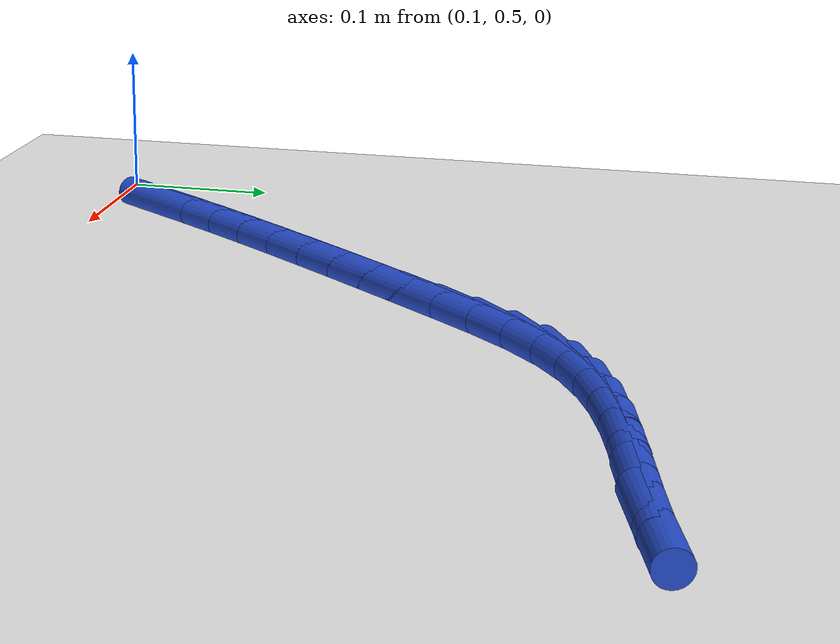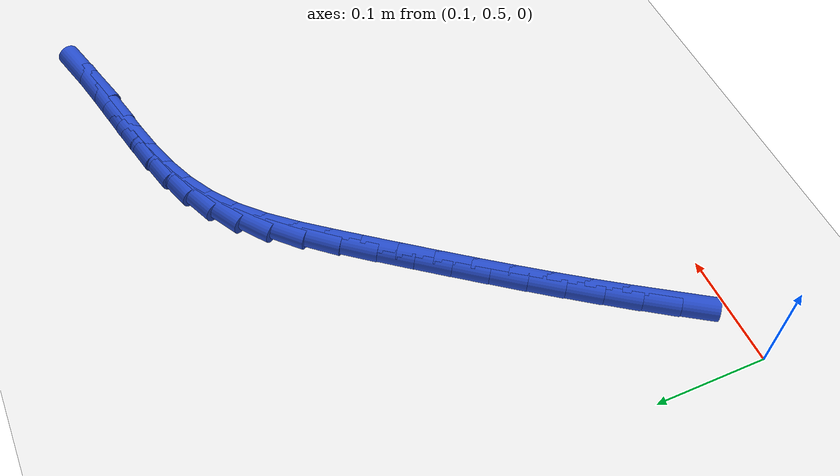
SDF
<sdf version="1.6">
 <world name="default">
  <model name="ground_plane">
   <static>1</static>
   <link name="link">
    <collision name="collision">
     <geometry><plane><normal>0 0 1</normal><size>100 100</size></plane></geometry>
     <surface><friction><ode><mu>100</mu><mu2>50</mu2></ode></friction></surface>
    </collision>
    <visual name="visual">
     <cast_shadows>0</cast_shadows>
     <geometry><plane><normal>0 0 1</normal><size>100 100</size></plane></geometry>
     <material>
      <script><uri>file://media/materials/scripts/gazebo.material</uri><name>Gazebo/WhiteGlow</name></script>
     </material>
    </visual>
   </link>
  </model>
  <model name="line">
   <link name="link_19">
    <pose>0.17131781578610913 0.5462636461478281 0.01 0 1.57 0.989904282080531</pose>
    <collision name="collision">
     <geometry><cylinder><radius>0.01</radius><length>0.08</length></cylinder></geometry>
    </collision>
    <visual name="visual">
     <material>
      <script><name>Gazebo/Blue</name><uri>file://media/materials/scripts/gazebo.material</uri></script>
     </material>
     <geometry><cylinder><radius>0.01</radius><length>0.08</length></cylinder></geometry>
    </visual>
   </link>
   <link name="link_20">
    <pose>0.1883365220406359 0.5721892429637337 0.01 0 1.57 0.974487415327446</pose>
    <collision name="collision">
     <geometry><cylinder><radius>0.01</radius><length>0.08</length></cylinder></geometry>
    </collision>
    <visual name="visual">
     <material>
      <script><name>Gazebo/Blue</name><uri>file://media/materials/scripts/gazebo.material</uri></script>
     </material>
     <geometry><cylinder><radius>0.01</radius><length>0.08</length></cylinder></geometry>
    </visual>
   </link>
   <link name="link_21">
    <pose>0.2058338195601817 0.5979686431187788 0.01 0 1.57 0.9610119758175012</pose>
    <collision name="collision">
     <geometry><cylinder><radius>0.01</radius><length>0.08</length></cylinder></geometry>
    </collision>
    <visual name="visual">
     <material>
      <script><name>Gazebo/Blue</name><uri>file://media/materials/scripts/gazebo.material</uri></script>
     </material>
     <geometry><cylinder><radius>0.01</radius><length>0.08</length></cylinder></geometry>
    </visual>
   </link>
   <link name="link_22">
    <pose>0.223759136290114 0.6236276326792349 0.01 0 1.57 0.9494467997457402</pose>
    <collision name="collision">
     <geometry><cylinder><radius>0.01</radius><length>0.08</length></cylinder></geometry>
    </collision>
    <visual name="visual">
     <material>
      <script><name>Gazebo/Blue</name><uri>file://media/materials/scripts/gazebo.material</uri></script>
     </material>
     <geometry><cylinder><radius>0.01</radius><length>0.08</length></cylinder></geometry>
    </visual>
   </link>
   <link name="link_23">
    <pose>0.2420619001758006 0.6491919977113744 0.01 0 1.57 0.9397605950378515</pose>
    <collision name="collision">
     <geometry><cylinder><radius>0.01</radius><length>0.08</length></cylinder></geometry>
    </collision>
    <visual name="visual">
     <material>
      <script><name>Gazebo/Blue</name><uri>file://media/materials/scripts/gazebo.material</uri></script>
     </material>
     <geometry><cylinder><radius>0.01</radius><length>0.08</length></cylinder></geometry>
    </visual>
   </link>
   <link name="link_24">
    <pose>0.260691539162609 0.6746875242814689 0.01 0 1.57 0.9319231098250029</pose>
    <collision name="collision">
     <geometry><cylinder><radius>0.01</radius><length>0.08</length></cylinder></geometry>
    </collision>
    <visual name="visual">
     <material>
      <script><name>Gazebo/Blue</name><uri>file://media/materials/scripts/gazebo.material</uri></script>
     </material>
     <geometry><cylinder><radius>0.01</radius><length>0.08</length></cylinder></geometry>
    </visual>
   </link>
   <link name="link_25">
    <pose>0.27959748119590666 0.7001399984557903 0.01 0 1.57 0.9259060374786907</pose>
    <collision name="collision">
     <geometry><cylinder><radius>0.01</radius><length>0.08</length></cylinder></geometry>
    </collision>
    <visual name="visual">
     <material>
      <script><name>Gazebo/Blue</name><uri>file://media/materials/scripts/gazebo.material</uri></script>
     </material>
     <geometry><cylinder><radius>0.01</radius><length>0.08</length></cylinder></geometry>
    </visual>
   </link>
   <link name="link_26">
    <pose>0.29872915422106117 0.7255752063006103 0.01 0 1.57 0.9216836871526607</pose>
    <collision name="collision">
     <geometry><cylinder><radius>0.01</radius><length>0.08</length></cylinder></geometry>
    </collision>
    <visual name="visual">
     <material>
      <script><name>Gazebo/Blue</name><uri>file://media/materials/scripts/gazebo.material</uri></script>
     </material>
     <geometry><cylinder><radius>0.01</radius><length>0.08</length></cylinder></geometry>
    </visual>
   </link>
   <link name="link_27">
    <pose>0.31803598618343987 0.7510189338822008 0.01 0 1.57 0.9189901971206051</pose>
    <collision name="collision">
     <geometry><cylinder><radius>0.01</radius><length>0.08</length></cylinder></geometry>
    </collision>
    <visual name="visual">
     <material>
      <script><name>Gazebo/Blue</name><uri>file://media/materials/scripts/gazebo.material</uri></script>
     </material>
     <geometry><cylinder><radius>0.01</radius><length>0.08</length></cylinder></geometry>
    </visual>
   </link>
   <link name="link_28">
    <pose>0.33747000487616874 0.7764875257632144 0.01 0 1.57 0.9051188082044218</pose>
    <collision name="collision">
     <geometry><cylinder><radius>0.01</radius><length>0.08</length></cylinder></geometry>
    </collision>
    <visual name="visual">
     <material>
      <script><name>Gazebo/Blue</name><uri>file://media/materials/scripts/gazebo.material</uri></script>
     </material>
     <geometry><cylinder><radius>0.01</radius><length>0.08</length></cylinder></geometry>
    </visual>
   </link>
   <link name="link_29">
    <pose>0.3571177642959332 0.8015087865008468 0.01 0 1.57 0.8597161416537701</pose>
    <collision name="collision">
     <geometry><cylinder><radius>0.01</radius><length>0.08</length></cylinder></geometry>
    </collision>
    <visual name="visual">
     <material>
      <script><name>Gazebo/Blue</name><uri>file://media/materials/scripts/gazebo.material</uri></script>
     </material>
     <geometry><cylinder><radius>0.01</radius><length>0.08</length></cylinder></geometry>
    </visual>
   </link>
   <link name="link_30">
    <pose>0.3772628477189194 0.8248949969644558 0.01 0 1.57 0.77490003786797</pose>
    <collision name="collision">
     <geometry><cylinder><radius>0.01</radius><length>0.08</length></cylinder></geometry>
    </collision>
    <visual name="visual">
     <material>
      <script><name>Gazebo/Blue</name><uri>file://media/materials/scripts/gazebo.material</uri></script>
     </material>
     <geometry><cylinder><radius>0.01</radius><length>0.08</length></cylinder></geometry>
    </visual>
   </link>
   <link name="link_31">
    <pose>0.39820451231698023 0.8454015173278632 0.01 0 1.57 0.6485485014471296</pose>
    <collision name="collision">
     <geometry><cylinder><radius>0.01</radius><length>0.08</length></cylinder></geometry>
    </collision>
    <visual name="visual">
     <material>
      <script><name>Gazebo/Blue</name><uri>file://media/materials/scripts/gazebo.material</uri></script>
     </material>
     <geometry><cylinder><radius>0.01</radius><length>0.08</length></cylinder></geometry>
    </visual>
   </link>
   <link name="link_32">
    <pose>0.4201918787304054 0.8620661070335611 0.01 0 1.57 0.5184713946057818</pose>
    <collision name="collision">
     <geometry><cylinder><radius>0.01</radius><length>0.08</length></cylinder></geometry>
    </collision>
    <visual name="visual">
     <material>
      <script><name>Gazebo/Blue</name><uri>file://media/materials/scripts/gazebo.material</uri></script>
     </material>
     <geometry><cylinder><radius>0.01</radius><length>0.08</length></cylinder></geometry>
    </visual>
   </link>
   <link name="link_33">
    <pose>0.44324469032267944 0.8752185170759016 0.01 0 1.57 0.4056807937807828</pose>
    <collision name="collision">
     <geometry><cylinder><radius>0.01</radius><length>0.08</length></cylinder></geometry>
    </collision>
    <visual name="visual">
     <material>
      <script><name>Gazebo/Blue</name><uri>file://media/materials/scripts/gazebo.material</uri></script>
     </material>
     <geometry><cylinder><radius>0.01</radius><length>0.08</length></cylinder></geometry>
    </visual>
   </link>
   <link name="link_34">
    <pose>0.4673171313430829 0.8855577670310238 0.01 0 1.57 0.31730220325802677</pose>
    <collision name="collision">
     <geometry><cylinder><radius>0.01</radius><length>0.08</length></cylinder></geometry>
    </collision>
    <visual name="visual">
     <material>
      <script><name>Gazebo/Blue</name><uri>file://media/materials/scripts/gazebo.material</uri></script>
     </material>
     <geometry><cylinder><radius>0.01</radius><length>0.08</length></cylinder></geometry>
    </visual>
   </link>
   <link name="link_35">
    <pose>0.4923633808962642 0.8937829054527435 0.01 0 1.57 0.25641433667001556</pose>
    <collision name="collision">
     <geometry><cylinder><radius>0.01</radius><length>0.08</length></cylinder></geometry>
    </collision>
    <visual name="visual">
     <material>
      <script><name>Gazebo/Blue</name><uri>file://media/materials/scripts/gazebo.material</uri></script>
     </material>
     <geometry><cylinder><radius>0.01</radius><length>0.08</length></cylinder></geometry>
    </visual>
   </link>
   <link name="link_36">
    <pose>0.5183376180868722 0.9005929808948773 0.01 0 1.57 0.22313429715837954</pose>
    <collision name="collision">
     <geometry><cylinder><radius>0.01</radius><length>0.08</length></cylinder></geometry>
    </collision>
    <visual name="visual">
     <material>
      <script><name>Gazebo/Blue</name><uri>file://media/materials/scripts/gazebo.material</uri></script>
     </material>
     <geometry><cylinder><radius>0.01</radius><length>0.08</length></cylinder></geometry>
    </visual>
   </link>
   <link name="link_37">
    <pose>0.5451940220195554 0.9066870419112412 0.01 0 1.57 0.21602292095242784</pose>
    <collision name="collision">
     <geometry><cylinder><radius>0.01</radius><length>0.08</length></cylinder></geometry>
    </collision>
    <visual name="visual">
     <material>
      <script><name>Gazebo/Blue</name><uri>file://media/materials/scripts/gazebo.material</uri></script>
     </material>
     <geometry><cylinder><radius>0.01</radius><length>0.08</length></cylinder></geometry>
    </visual>
   </link>
   <link name="link_38">
    <pose>0.5728867717989624 0.9127641370556507 0.01 0 1.57 0.23299368610358295</pose>
    <collision name="collision">
     <geometry><cylinder><radius>0.01</radius><length>0.08</length></cylinder></geometry>
    </collision>
    <visual name="visual">
     <material>
      <script><name>Gazebo/Blue</name><uri>file://media/materials/scripts/gazebo.material</uri></script>
     </material>
     <geometry><cylinder><radius>0.01</radius><length>0.08</length></cylinder></geometry>
    </visual>
   </link>
   <link name="link_39">
    <pose>0.6013700465297419 0.9195233148819226 0.01 0 1.57 0.2716272766055668</pose>
    <collision name="collision">
     <geometry><cylinder><radius>0.01</radius><length>0.08</length></cylinder></geometry>
    </collision>
    <visual name="visual">
     <material>
      <script><name>Gazebo/Blue</name><uri>file://media/materials/scripts/gazebo.material</uri></script>
     </material>
     <geometry><cylinder><radius>0.01</radius><length>0.08</length></cylinder></geometry>
    </visual>
   </link>
  </model>
 </world>
</sdf>
